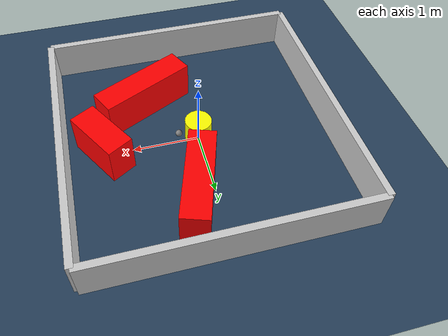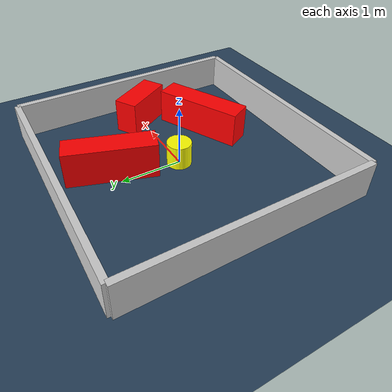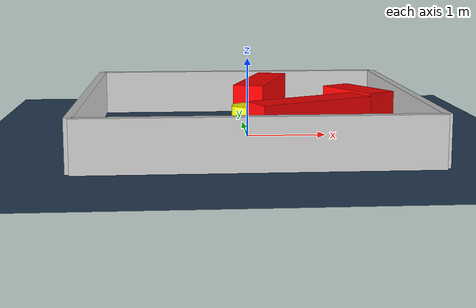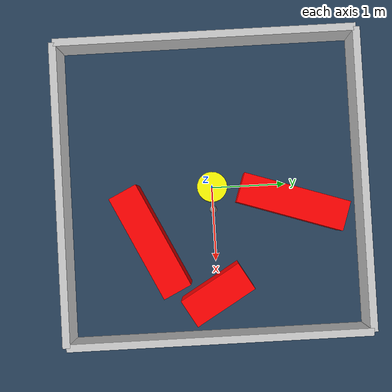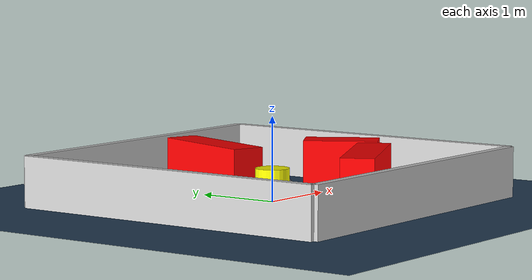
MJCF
<?xml version="1.0" ?>
<mujoco model="generated_environment">
  <option timestep="0.01" integrator="RK4" cone="elliptic"/>
  <default>
    <geom density="1"/>
  </default>
  <asset>
    <texture builtin="gradient" height="3072" rgb1="0.3 0.5 0.7" rgb2="0 0 0" type="skybox" width="512"/>
    <texture builtin="checker" height="300" mark="edge" markrgb="0.8 0.8 0.8" name="groundplane" rgb1="0.2 0.3 0.4" rgb2="0.1 0.2 0.3" type="2d" width="300"/>
    <material name="groundplane" reflectance="0.2" texrepeat="5 5" texture="groundplane" texuniform="true"/>
    <material name="robot" rgba="0.0 1.0 0.0 1"/>
  </asset>
  <worldbody>
    <light dir="0 0 -1" directional="true" pos="0 0 1.5"/>
    <geom condim="4" friction="1.0 0.005 0.001" material="groundplane" name="floor" size="0 0 0.05" type="plane"/>
    <body name="walls">
      <geom name="wall_1" condim="4" pos="-2.0 0.0 0.3" rgba="0.800000011920929 0.800000011920929 0.800000011920929 1.0" size="0.05 2.0 0.3" type="box"/>
      <geom name="wall_2" condim="4" pos="2.0 0.0 0.3" rgba="0.800000011920929 0.800000011920929 0.800000011920929 1.0" size="0.05 2.0 0.3" type="box"/>
      <geom name="wall_3" condim="4" pos="0.0 -2.0 0.3" rgba="0.800000011920929 0.800000011920929 0.800000011920929 1.0" size="2.0 0.05 0.3" type="box"/>
      <geom name="wall_4" condim="4" pos="0.0 2.0 0.3" rgba="0.800000011920929 0.800000011920929 0.800000011920929 1.0" size="2.0 0.05 0.3" type="box"/>
    </body>
    <body name="robot">
      <joint name="joint_x" type="slide" pos="0 0 0" axis="1 0 0"/>
      <joint name="joint_y" type="slide" pos="0 0 0" axis="0 1 0"/>
      <geom name="robot" type="sphere" pos="0.3 0.0 0.2" size="0.05" mass="5." friction="1.0 0.005 0.0001" condim="4" rgba="0.5 0.5 0.5 1.0"/>
      <site name="sensor_ball"/>
    </body>
    <body name="obstacle_movable_1">
      <geom name="obstacle_movable_1" condim="4" pos="0.0 0.0 0.2" euler="0 0 0.0" friction="1.0 0.005 0.001" rgba="1.0 1.0 0.0 1.0" size="0.2 0.2 0.0" type="cylinder" mass="0.1"/>
      <joint type="free"/>
    </body>
    <body name="obstacle_2_static">
      <geom name="obstacle_2_static" condim="4" pos="0.6805075674118031 -0.8494984542792281 0.3" euler="0 0 26.094738063186412" friction="1.0 0.005 0.001" rgba="1 0 0 1" size="0.7476370988611325 0.2 0.3" type="box"/>
    </body>
    <body name="obstacle_3_static">
      <geom name="obstacle_3_static" condim="4" pos="1.4173138873915008 0.0024482970666062087 0.3" euler="0 0 300.5922907151212" friction="1.0 0.005 0.001" rgba="1 0 0 1" size="0.44794418356834825 0.2 0.3" type="box"/>
    </body>
    <body name="obstacle_4_static">
      <geom name="obstacle_4_static" condim="4" pos="0.2562574923578995 1.052420456482963 0.3" euler="0 0 251.64129986442768" friction="1.0 0.005 0.001" rgba="1 0 0 1" size="0.7188869093221171 0.2 0.3" type="box"/>
    </body>
  </worldbody>
  <actuator>
    <motor name="actuator_x" joint="joint_x" gear="1" ctrlrange="-1 1"/>
    <motor name="actuator_y" joint="joint_y" gear="1" ctrlrange="-1 1"/>
  </actuator>
</mujoco>
